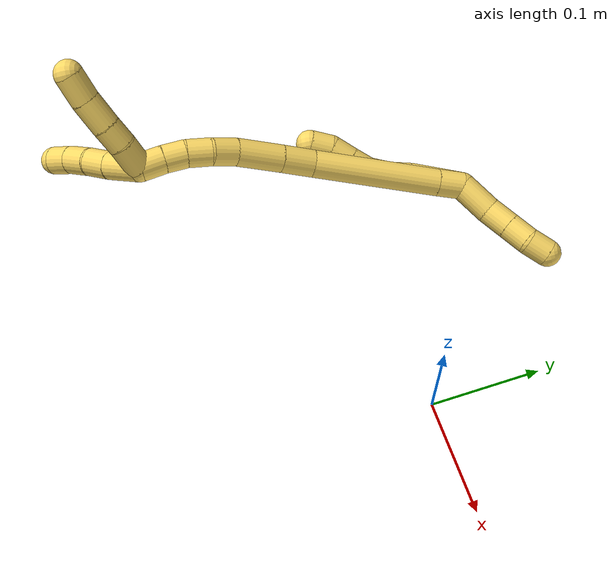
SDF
<sdf version="1.7">
 <world name="default">
  <model name="5">
   <static>0</static>
   <link name="5">
    <collision name="collision-cylinder-e_1_2_8">
     <pose>0.008445 -0.00292 0.022735 0.127743 0.352991 0.022813</pose>
     <geometry><cylinder><radius>0.0125</radius><length>0.048855</length></cylinder></geometry>
     <surface>
      <friction><ode><mu>1.16</mu><mu2>1.16</mu2><slip1>0</slip1><slip2>0</slip2></ode></friction>
      <contact><ode><kp>1e+06</kp><kd>1</kd><max_vel>0</max_vel><min_depth>0.001</min_depth></ode></contact>
     </surface>
    </collision>
    <visual name="visual-cylinder-e_1_2_8">
     <pose>0.008445 -0.00292 0.022735 0.127743 0.352991 0.022813</pose>
     <geometry><cylinder><radius>0.0125</radius><length>0.048855</length></cylinder></geometry>
     <material><ambient>1 0.858824 0.4 1</ambient></material>
    </visual>
    <collision name="collision-cylinder-e_2_8_9">
     <pose>0.018969 -0.009233 0.054895 0.345545 0.204692 0.035843</pose>
     <geometry><cylinder><radius>0.0125</radius><length>0.020464</length></cylinder></geometry>
     <surface>
      <friction><ode><mu>1.16</mu><mu2>1.16</mu2><slip1>0</slip1><slip2>0</slip2></ode></friction>
      <contact><ode><kp>1e+06</kp><kd>1</kd><max_vel>0</max_vel><min_depth>0.001</min_depth></ode></contact>
     </surface>
    </collision>
    <visual name="visual-cylinder-e_2_8_9">
     <pose>0.018969 -0.009233 0.054895 0.345545 0.204692 0.035843</pose>
     <geometry><cylinder><radius>0.0125</radius><length>0.020464</length></cylinder></geometry>
     <material><ambient>1 0.858824 0.4 1</ambient></material>
    </visual>
    <collision name="collision-cylinder-e_3_9_10">
     <pose>0.024161 -0.01837 0.072293 0.624317 0.306754 0.099693</pose>
     <geometry><cylinder><radius>0.0125</radius><length>0.020613</length></cylinder></geometry>
     <surface>
      <friction><ode><mu>1.16</mu><mu2>1.16</mu2><slip1>0</slip1><slip2>0</slip2></ode></friction>
      <contact><ode><kp>1e+06</kp><kd>1</kd><max_vel>0</max_vel><min_depth>0.001</min_depth></ode></contact>
     </surface>
    </collision>
    <visual name="visual-cylinder-e_3_9_10">
     <pose>0.024161 -0.01837 0.072293 0.624317 0.306754 0.099693</pose>
     <geometry><cylinder><radius>0.0125</radius><length>0.020613</length></cylinder></geometry>
     <material><ambient>1 0.858824 0.4 1</ambient></material>
    </visual>
    <collision name="collision-cylinder-e_4_10_11">
     <pose>0.033193 -0.028561 0.087012 0.582876 0.632225 0.195609</pose>
     <geometry><cylinder><radius>0.0125</radius><length>0.020036</length></cylinder></geometry>
     <surface>
      <friction><ode><mu>1.16</mu><mu2>1.16</mu2><slip1>0</slip1><slip2>0</slip2></ode></friction>
      <contact><ode><kp>1e+06</kp><kd>1</kd><max_vel>0</max_vel><min_depth>0.001</min_depth></ode></contact>
     </surface>
    </collision>
    <visual name="visual-cylinder-e_4_10_11">
     <pose>0.033193 -0.028561 0.087012 0.582876 0.632225 0.195609</pose>
     <geometry><cylinder><radius>0.0125</radius><length>0.020036</length></cylinder></geometry>
     <material><ambient>1 0.858824 0.4 1</ambient></material>
    </visual>
    <collision name="collision-cylinder-e_5_11_12">
     <pose>0.045292 -0.037153 0.100443 0.554896 0.665978 0.196368</pose>
     <geometry><cylinder><radius>0.0125</radius><length>0.020002</length></cylinder></geometry>
     <surface>
      <friction><ode><mu>1.16</mu><mu2>1.16</mu2><slip1>0</slip1><slip2>0</slip2></ode></friction>
      <contact><ode><kp>1e+06</kp><kd>1</kd><max_vel>0</max_vel><min_depth>0.001</min_depth></ode></contact>
     </surface>
    </collision>
    <visual name="visual-cylinder-e_5_11_12">
     <pose>0.045292 -0.037153 0.100443 0.554896 0.665978 0.196368</pose>
     <geometry><cylinder><radius>0.0125</radius><length>0.020002</length></cylinder></geometry>
     <material><ambient>1 0.858824 0.4 1</ambient></material>
    </visual>
    <collision name="collision-cylinder-e_6_12_6">
     <pose>0.054891 -0.045924 0.115324 0.513993 0.34852 0.092466</pose>
     <geometry><cylinder><radius>0.0125</radius><length>0.020031</length></cylinder></geometry>
     <surface>
      <friction><ode><mu>1.16</mu><mu2>1.16</mu2><slip1>0</slip1><slip2>0</slip2></ode></friction>
      <contact><ode><kp>1e+06</kp><kd>1</kd><max_vel>0</max_vel><min_depth>0.001</min_depth></ode></contact>
     </surface>
    </collision>
    <visual name="visual-cylinder-e_6_12_6">
     <pose>0.054891 -0.045924 0.115324 0.513993 0.34852 0.092466</pose>
     <geometry><cylinder><radius>0.0125</radius><length>0.020031</length></cylinder></geometry>
     <material><ambient>1 0.858824 0.4 1</ambient></material>
    </visual>
    <collision name="collision-cylinder-e_1_2_13">
     <pose>-0.013086 0.003152 -0.009863 -2.83229 -0.9014 2.51828</pose>
     <geometry><cylinder><radius>0.0125</radius><length>0.033373</length></cylinder></geometry>
     <surface>
      <friction><ode><mu>1.16</mu><mu2>1.16</mu2><slip1>0</slip1><slip2>0</slip2></ode></friction>
      <contact><ode><kp>1e+06</kp><kd>1</kd><max_vel>0</max_vel><min_depth>0.001</min_depth></ode></contact>
     </surface>
    </collision>
    <visual name="visual-cylinder-e_1_2_13">
     <pose>-0.013086 0.003152 -0.009863 -2.83229 -0.9014 2.51828</pose>
     <geometry><cylinder><radius>0.0125</radius><length>0.033373</length></cylinder></geometry>
     <material><ambient>1 0.858824 0.4 1</ambient></material>
    </visual>
    <collision name="collision-cylinder-e_2_13_14">
     <pose>-0.034922 0.006399 -0.027834 -3.12979 -0.823475 3.11456</pose>
     <geometry><cylinder><radius>0.0125</radius><length>0.02386</length></cylinder></geometry>
     <surface>
      <friction><ode><mu>1.16</mu><mu2>1.16</mu2><slip1>0</slip1><slip2>0</slip2></ode></friction>
      <contact><ode><kp>1e+06</kp><kd>1</kd><max_vel>0</max_vel><min_depth>0.001</min_depth></ode></contact>
     </surface>
    </collision>
    <visual name="visual-cylinder-e_2_13_14">
     <pose>-0.034922 0.006399 -0.027834 -3.12979 -0.823475 3.11456</pose>
     <geometry><cylinder><radius>0.0125</radius><length>0.02386</length></cylinder></geometry>
     <material><ambient>1 0.858824 0.4 1</ambient></material>
    </visual>
    <collision name="collision-cylinder-e_3_14_15">
     <pose>-0.051706 0.006637 -0.043361 -3.12241 -0.825003 3.09775</pose>
     <geometry><cylinder><radius>0.0125</radius><length>0.021873</length></cylinder></geometry>
     <surface>
      <friction><ode><mu>1.16</mu><mu2>1.16</mu2><slip1>0</slip1><slip2>0</slip2></ode></friction>
      <contact><ode><kp>1e+06</kp><kd>1</kd><max_vel>0</max_vel><min_depth>0.001</min_depth></ode></contact>
     </surface>
    </collision>
    <visual name="visual-cylinder-e_3_14_15">
     <pose>-0.051706 0.006637 -0.043361 -3.12241 -0.825003 3.09775</pose>
     <geometry><cylinder><radius>0.0125</radius><length>0.021873</length></cylinder></geometry>
     <material><ambient>1 0.858824 0.4 1</ambient></material>
    </visual>
    <collision name="collision-cylinder-e_4_15_5">
     <pose>-0.066501 0.009783 -0.058157 -2.75496 -0.703896 2.1621</pose>
     <geometry><cylinder><radius>0.0125</radius><length>0.020894</length></cylinder></geometry>
     <surface>
      <friction><ode><mu>1.16</mu><mu2>1.16</mu2><slip1>0</slip1><slip2>0</slip2></ode></friction>
      <contact><ode><kp>1e+06</kp><kd>1</kd><max_vel>0</max_vel><min_depth>0.001</min_depth></ode></contact>
     </surface>
    </collision>
    <visual name="visual-cylinder-e_4_15_5">
     <pose>-0.066501 0.009783 -0.058157 -2.75496 -0.703896 2.1621</pose>
     <geometry><cylinder><radius>0.0125</radius><length>0.020894</length></cylinder></geometry>
     <material><ambient>1 0.858824 0.4 1</ambient></material>
    </visual>
    <collision name="collision-cylinder-e_1_2_16">
     <pose>0.003017 -0.005627 0.01011 0.507834 0.255037 0.066523</pose>
     <geometry><cylinder><radius>0.0125</radius><length>0.023915</length></cylinder></geometry>
     <surface>
      <friction><ode><mu>1.16</mu><mu2>1.16</mu2><slip1>0</slip1><slip2>0</slip2></ode></friction>
      <contact><ode><kp>1e+06</kp><kd>1</kd><max_vel>0</max_vel><min_depth>0.001</min_depth></ode></contact>
     </surface>
    </collision>
    <visual name="visual-cylinder-e_1_2_16">
     <pose>0.003017 -0.005627 0.01011 0.507834 0.255037 0.066523</pose>
     <geometry><cylinder><radius>0.0125</radius><length>0.023915</length></cylinder></geometry>
     <material><ambient>1 0.858824 0.4 1</ambient></material>
    </visual>
    <collision name="collision-cylinder-e_2_16_17">
     <pose>0.021516 -0.039744 0.0691 0.527733 0.267124 0.072568</pose>
     <geometry><cylinder><radius>0.0125</radius><length>0.117314</length></cylinder></geometry>
     <surface>
      <friction><ode><mu>1.16</mu><mu2>1.16</mu2><slip1>0</slip1><slip2>0</slip2></ode></friction>
      <contact><ode><kp>1e+06</kp><kd>1</kd><max_vel>0</max_vel><min_depth>0.001</min_depth></ode></contact>
     </surface>
    </collision>
    <visual name="visual-cylinder-e_2_16_17">
     <pose>0.021516 -0.039744 0.0691 0.527733 0.267124 0.072568</pose>
     <geometry><cylinder><radius>0.0125</radius><length>0.117314</length></cylinder></geometry>
     <material><ambient>1 0.858824 0.4 1</ambient></material>
    </visual>
    <collision name="collision-cylinder-e_3_17_18">
     <pose>0.040518 -0.077425 0.129243 0.68441 0.237504 0.084952</pose>
     <geometry><cylinder><radius>0.0125</radius><length>0.029913</length></cylinder></geometry>
     <surface>
      <friction><ode><mu>1.16</mu><mu2>1.16</mu2><slip1>0</slip1><slip2>0</slip2></ode></friction>
      <contact><ode><kp>1e+06</kp><kd>1</kd><max_vel>0</max_vel><min_depth>0.001</min_depth></ode></contact>
     </surface>
    </collision>
    <visual name="visual-cylinder-e_3_17_18">
     <pose>0.040518 -0.077425 0.129243 0.68441 0.237504 0.084952</pose>
     <geometry><cylinder><radius>0.0125</radius><length>0.029913</length></cylinder></geometry>
     <material><ambient>1 0.858824 0.4 1</ambient></material>
    </visual>
    <collision name="collision-cylinder-e_4_18_19">
     <pose>0.048852 -0.099442 0.156598 0.67297 0.229841 0.080707</pose>
     <geometry><cylinder><radius>0.0125</radius><length>0.04227</length></cylinder></geometry>
     <surface>
      <friction><ode><mu>1.16</mu><mu2>1.16</mu2><slip1>0</slip1><slip2>0</slip2></ode></friction>
      <contact><ode><kp>1e+06</kp><kd>1</kd><max_vel>0</max_vel><min_depth>0.001</min_depth></ode></contact>
     </surface>
    </collision>
    <visual name="visual-cylinder-e_4_18_19">
     <pose>0.048852 -0.099442 0.156598 0.67297 0.229841 0.080707</pose>
     <geometry><cylinder><radius>0.0125</radius><length>0.04227</length></cylinder></geometry>
     <material><ambient>1 0.858824 0.4 1</ambient></material>
    </visual>
    <collision name="collision-cylinder-e_5_19_20">
     <pose>0.054549 -0.11992 0.180917 0.749102 0.078348 0.030812</pose>
     <geometry><cylinder><radius>0.0125</radius><length>0.022539</length></cylinder></geometry>
     <surface>
      <friction><ode><mu>1.16</mu><mu2>1.16</mu2><slip1>0</slip1><slip2>0</slip2></ode></friction>
      <contact><ode><kp>1e+06</kp><kd>1</kd><max_vel>0</max_vel><min_depth>0.001</min_depth></ode></contact>
     </surface>
    </collision>
    <visual name="visual-cylinder-e_5_19_20">
     <pose>0.054549 -0.11992 0.180917 0.749102 0.078348 0.030812</pose>
     <geometry><cylinder><radius>0.0125</radius><length>0.022539</length></cylinder></geometry>
     <material><ambient>1 0.858824 0.4 1</ambient></material>
    </visual>
    <collision name="collision-cylinder-e_6_20_21">
     <pose>0.055884 -0.133223 0.198613 0.538218 0.040999 0.011309</pose>
     <geometry><cylinder><radius>0.0125</radius><length>0.022072</length></cylinder></geometry>
     <surface>
      <friction><ode><mu>1.16</mu><mu2>1.16</mu2><slip1>0</slip1><slip2>0</slip2></ode></friction>
      <contact><ode><kp>1e+06</kp><kd>1</kd><max_vel>0</max_vel><min_depth>0.001</min_depth></ode></contact>
     </surface>
    </collision>
    <visual name="visual-cylinder-e_6_20_21">
     <pose>0.055884 -0.133223 0.198613 0.538218 0.040999 0.011309</pose>
     <geometry><cylinder><radius>0.0125</radius><length>0.022072</length></cylinder></geometry>
     <material><ambient>1 0.858824 0.4 1</ambient></material>
    </visual>
    <collision name="collision-cylinder-e_7_21_22">
     <pose>0.055056 -0.143577 0.216876 0.490816 -0.127668 -0.032016</pose>
     <geometry><cylinder><radius>0.0125</radius><length>0.02011</length></cylinder></geometry>
     <surface>
      <friction><ode><mu>1.16</mu><mu2>1.16</mu2><slip1>0</slip1><slip2>0</slip2></ode></friction>
      <contact><ode><kp>1e+06</kp><kd>1</kd><max_vel>0</max_vel><min_depth>0.001</min_depth></ode></contact>
     </surface>
    </collision>
    <visual name="visual-cylinder-e_7_21_22">
     <pose>0.055056 -0.143577 0.216876 0.490816 -0.127668 -0.032016</pose>
     <geometry><cylinder><radius>0.0125</radius><length>0.02011</length></cylinder></geometry>
     <material><ambient>1 0.858824 0.4 1</ambient></material>
    </visual>
    <collision name="collision-cylinder-e_8_22_1">
     <pose>0.051415 -0.1534 0.235039 0.500472 -0.217569 -0.055815</pose>
     <geometry><cylinder><radius>0.0125</radius><length>0.021867</length></cylinder></geometry>
     <surface>
      <friction><ode><mu>1.16</mu><mu2>1.16</mu2><slip1>0</slip1><slip2>0</slip2></ode></friction>
      <contact><ode><kp>1e+06</kp><kd>1</kd><max_vel>0</max_vel><min_depth>0.001</min_depth></ode></contact>
     </surface>
    </collision>
    <visual name="visual-cylinder-e_8_22_1">
     <pose>0.051415 -0.1534 0.235039 0.500472 -0.217569 -0.055815</pose>
     <geometry><cylinder><radius>0.0125</radius><length>0.021867</length></cylinder></geometry>
     <material><ambient>1 0.858824 0.4 1</ambient></material>
    </visual>
    <collision name="collision-cylinder-e_1_1_23">
     <pose>0.058631 -0.167524 0.246677 1.32357 0.80087 0.637031</pose>
     <geometry><cylinder><radius>0.0125</radius><length>0.026674</length></cylinder></geometry>
     <surface>
      <friction><ode><mu>1.16</mu><mu2>1.16</mu2><slip1>0</slip1><slip2>0</slip2></ode></friction>
      <contact><ode><kp>1e+06</kp><kd>1</kd><max_vel>0</max_vel><min_depth>0.001</min_depth></ode></contact>
     </surface>
    </collision>
    <visual name="visual-cylinder-e_1_1_23">
     <pose>0.058631 -0.167524 0.246677 1.32357 0.80087 0.637031</pose>
     <geometry><cylinder><radius>0.0125</radius><length>0.026674</length></cylinder></geometry>
     <material><ambient>1 0.858824 0.4 1</ambient></material>
    </visual>
    <collision name="collision-cylinder-e_2_23_24">
     <pose>0.075933 -0.182788 0.251851 1.13687 0.841707 0.556957</pose>
     <geometry><cylinder><radius>0.0125</radius><length>0.020722</length></cylinder></geometry>
     <surface>
      <friction><ode><mu>1.16</mu><mu2>1.16</mu2><slip1>0</slip1><slip2>0</slip2></ode></friction>
      <contact><ode><kp>1e+06</kp><kd>1</kd><max_vel>0</max_vel><min_depth>0.001</min_depth></ode></contact>
     </surface>
    </collision>
    <visual name="visual-cylinder-e_2_23_24">
     <pose>0.075933 -0.182788 0.251851 1.13687 0.841707 0.556957</pose>
     <geometry><cylinder><radius>0.0125</radius><length>0.020722</length></cylinder></geometry>
     <material><ambient>1 0.858824 0.4 1</ambient></material>
    </visual>
    <collision name="collision-cylinder-e_3_24_25">
     <pose>0.094392 -0.196668 0.258622 1.10087 0.898474 0.575335</pose>
     <geometry><cylinder><radius>0.0125</radius><length>0.027434</length></cylinder></geometry>
     <surface>
      <friction><ode><mu>1.16</mu><mu2>1.16</mu2><slip1>0</slip1><slip2>0</slip2></ode></friction>
      <contact><ode><kp>1e+06</kp><kd>1</kd><max_vel>0</max_vel><min_depth>0.001</min_depth></ode></contact>
     </surface>
    </collision>
    <visual name="visual-cylinder-e_3_24_25">
     <pose>0.094392 -0.196668 0.258622 1.10087 0.898474 0.575335</pose>
     <geometry><cylinder><radius>0.0125</radius><length>0.027434</length></cylinder></geometry>
     <material><ambient>1 0.858824 0.4 1</ambient></material>
    </visual>
    <collision name="collision-cylinder-e_4_25_4">
     <pose>0.115371 -0.21126 0.264663 1.26878 0.951402 0.724692</pose>
     <geometry><cylinder><radius>0.0125</radius><length>0.02517</length></cylinder></geometry>
     <surface>
      <friction><ode><mu>1.16</mu><mu2>1.16</mu2><slip1>0</slip1><slip2>0</slip2></ode></friction>
      <contact><ode><kp>1e+06</kp><kd>1</kd><max_vel>0</max_vel><min_depth>0.001</min_depth></ode></contact>
     </surface>
    </collision>
    <visual name="visual-cylinder-e_4_25_4">
     <pose>0.115371 -0.21126 0.264663 1.26878 0.951402 0.724692</pose>
     <geometry><cylinder><radius>0.0125</radius><length>0.02517</length></cylinder></geometry>
     <material><ambient>1 0.858824 0.4 1</ambient></material>
    </visual>
    <collision name="collision-cylinder-e_1_1_26">
     <pose>0.053306 -0.155436 0.259986 -0.195564 0.261493 -0.025797</pose>
     <geometry><cylinder><radius>0.0125</radius><length>0.032885</length></cylinder></geometry>
     <surface>
      <friction><ode><mu>1.16</mu><mu2>1.16</mu2><slip1>0</slip1><slip2>0</slip2></ode></friction>
      <contact><ode><kp>1e+06</kp><kd>1</kd><max_vel>0</max_vel><min_depth>0.001</min_depth></ode></contact>
     </surface>
    </collision>
    <visual name="visual-cylinder-e_1_1_26">
     <pose>0.053306 -0.155436 0.259986 -0.195564 0.261493 -0.025797</pose>
     <geometry><cylinder><radius>0.0125</radius><length>0.032885</length></cylinder></geometry>
     <material><ambient>1 0.858824 0.4 1</ambient></material>
    </visual>
    <collision name="collision-cylinder-e_2_26_27">
     <pose>0.061327 -0.150507 0.285974 -0.175249 0.342638 -0.030396</pose>
     <geometry><cylinder><radius>0.0125</radius><length>0.022444</length></cylinder></geometry>
     <surface>
      <friction><ode><mu>1.16</mu><mu2>1.16</mu2><slip1>0</slip1><slip2>0</slip2></ode></friction>
      <contact><ode><kp>1e+06</kp><kd>1</kd><max_vel>0</max_vel><min_depth>0.001</min_depth></ode></contact>
     </surface>
    </collision>
    <visual name="visual-cylinder-e_2_26_27">
     <pose>0.061327 -0.150507 0.285974 -0.175249 0.342638 -0.030396</pose>
     <geometry><cylinder><radius>0.0125</radius><length>0.022444</length></cylinder></geometry>
     <material><ambient>1 0.858824 0.4 1</ambient></material>
    </visual>
    <collision name="collision-cylinder-e_3_27_28">
     <pose>0.068496 -0.144829 0.307528 -0.331444 0.280691 -0.047249</pose>
     <geometry><cylinder><radius>0.0125</radius><length>0.024535</length></cylinder></geometry>
     <surface>
      <friction><ode><mu>1.16</mu><mu2>1.16</mu2><slip1>0</slip1><slip2>0</slip2></ode></friction>
      <contact><ode><kp>1e+06</kp><kd>1</kd><max_vel>0</max_vel><min_depth>0.001</min_depth></ode></contact>
     </surface>
    </collision>
    <visual name="visual-cylinder-e_3_27_28">
     <pose>0.068496 -0.144829 0.307528 -0.331444 0.280691 -0.047249</pose>
     <geometry><cylinder><radius>0.0125</radius><length>0.024535</length></cylinder></geometry>
     <material><ambient>1 0.858824 0.4 1</ambient></material>
    </visual>
    <collision name="collision-cylinder-e_4_28_3">
     <pose>0.073626 -0.13888 0.328364 -0.21472 0.172921 -0.018682</pose>
     <geometry><cylinder><radius>0.0125</radius><length>0.020136</length></cylinder></geometry>
     <surface>
      <friction><ode><mu>1.16</mu><mu2>1.16</mu2><slip1>0</slip1><slip2>0</slip2></ode></friction>
      <contact><ode><kp>1e+06</kp><kd>1</kd><max_vel>0</max_vel><min_depth>0.001</min_depth></ode></contact>
     </surface>
    </collision>
    <visual name="visual-cylinder-e_4_28_3">
     <pose>0.073626 -0.13888 0.328364 -0.21472 0.172921 -0.018682</pose>
     <geometry><cylinder><radius>0.0125</radius><length>0.020136</length></cylinder></geometry>
     <material><ambient>1 0.858824 0.4 1</ambient></material>
    </visual>
    <collision name="collision-sphere-3">
     <pose>0.075359 -0.136766 0.338054 0 -0 0</pose>
     <geometry><sphere><radius>0.0125</radius></sphere></geometry>
     <surface>
      <friction><ode><mu>1.16</mu><mu2>1.16</mu2><slip1>0</slip1><slip2>0</slip2></ode></friction>
      <contact><ode><kp>1e+06</kp><kd>1</kd><max_vel>0</max_vel><min_depth>0.001</min_depth></ode></contact>
     </surface>
    </collision>
    <visual name="visual-sphere-3">
     <pose>0.075359 -0.136766 0.338054 0 -0 0</pose>
     <geometry><sphere><radius>0.0125</radius></sphere></geometry>
     <material><ambient>1 0.858824 0.4 1</ambient></material>
    </visual>
    <collision name="collision-sphere-28">
     <pose>0.071894 -0.140993 0.318674 0 -0 0</pose>
     <geometry><sphere><radius>0.0125</radius></sphere></geometry>
     <surface>
      <friction><ode><mu>1.16</mu><mu2>1.16</mu2><slip1>0</slip1><slip2>0</slip2></ode></friction>
      <contact><ode><kp>1e+06</kp><kd>1</kd><max_vel>0</max_vel><min_depth>0.001</min_depth></ode></contact>
     </surface>
    </collision>
    <visual name="visual-sphere-28">
     <pose>0.071894 -0.140993 0.318674 0 -0 0</pose>
     <geometry><sphere><radius>0.0125</radius></sphere></geometry>
     <material><ambient>1 0.858824 0.4 1</ambient></material>
    </visual>
    <collision name="collision-sphere-27">
     <pose>0.065097 -0.148664 0.296382 0 -0 0</pose>
     <geometry><sphere><radius>0.0125</radius></sphere></geometry>
     <surface>
      <friction><ode><mu>1.16</mu><mu2>1.16</mu2><slip1>0</slip1><slip2>0</slip2></ode></friction>
      <contact><ode><kp>1e+06</kp><kd>1</kd><max_vel>0</max_vel><min_depth>0.001</min_depth></ode></contact>
     </surface>
    </collision>
    <visual name="visual-sphere-27">
     <pose>0.065097 -0.148664 0.296382 0 -0 0</pose>
     <geometry><sphere><radius>0.0125</radius></sphere></geometry>
     <material><ambient>1 0.858824 0.4 1</ambient></material>
    </visual>
    <collision name="collision-sphere-26">
     <pose>0.057557 -0.15235 0.275567 0 -0 0</pose>
     <geometry><sphere><radius>0.0125</radius></sphere></geometry>
     <surface>
      <friction><ode><mu>1.16</mu><mu2>1.16</mu2><slip1>0</slip1><slip2>0</slip2></ode></friction>
      <contact><ode><kp>1e+06</kp><kd>1</kd><max_vel>0</max_vel><min_depth>0.001</min_depth></ode></contact>
     </surface>
    </collision>
    <visual name="visual-sphere-26">
     <pose>0.057557 -0.15235 0.275567 0 -0 0</pose>
     <geometry><sphere><radius>0.0125</radius></sphere></geometry>
     <material><ambient>1 0.858824 0.4 1</ambient></material>
    </visual>
    <collision name="collision-sphere-4">
     <pose>0.125618 -0.218236 0.266836 0 -0 0</pose>
     <geometry><sphere><radius>0.0125</radius></sphere></geometry>
     <surface>
      <friction><ode><mu>1.16</mu><mu2>1.16</mu2><slip1>0</slip1><slip2>0</slip2></ode></friction>
      <contact><ode><kp>1e+06</kp><kd>1</kd><max_vel>0</max_vel><min_depth>0.001</min_depth></ode></contact>
     </surface>
    </collision>
    <visual name="visual-sphere-4">
     <pose>0.125618 -0.218236 0.266836 0 -0 0</pose>
     <geometry><sphere><radius>0.0125</radius></sphere></geometry>
     <material><ambient>1 0.858824 0.4 1</ambient></material>
    </visual>
    <collision name="collision-sphere-25">
     <pose>0.105124 -0.204285 0.26249 0 -0 0</pose>
     <geometry><sphere><radius>0.0125</radius></sphere></geometry>
     <surface>
      <friction><ode><mu>1.16</mu><mu2>1.16</mu2><slip1>0</slip1><slip2>0</slip2></ode></friction>
      <contact><ode><kp>1e+06</kp><kd>1</kd><max_vel>0</max_vel><min_depth>0.001</min_depth></ode></contact>
     </surface>
    </collision>
    <visual name="visual-sphere-25">
     <pose>0.105124 -0.204285 0.26249 0 -0 0</pose>
     <geometry><sphere><radius>0.0125</radius></sphere></geometry>
     <material><ambient>1 0.858824 0.4 1</ambient></material>
    </visual>
    <collision name="collision-sphere-24">
     <pose>0.08366 -0.189051 0.254753 0 -0 0</pose>
     <geometry><sphere><radius>0.0125</radius></sphere></geometry>
     <surface>
      <friction><ode><mu>1.16</mu><mu2>1.16</mu2><slip1>0</slip1><slip2>0</slip2></ode></friction>
      <contact><ode><kp>1e+06</kp><kd>1</kd><max_vel>0</max_vel><min_depth>0.001</min_depth></ode></contact>
     </surface>
    </collision>
    <visual name="visual-sphere-24">
     <pose>0.08366 -0.189051 0.254753 0 -0 0</pose>
     <geometry><sphere><radius>0.0125</radius></sphere></geometry>
     <material><ambient>1 0.858824 0.4 1</ambient></material>
    </visual>
    <collision name="collision-sphere-23">
     <pose>0.068206 -0.176526 0.248949 0 -0 0</pose>
     <geometry><sphere><radius>0.0125</radius></sphere></geometry>
     <surface>
      <friction><ode><mu>1.16</mu><mu2>1.16</mu2><slip1>0</slip1><slip2>0</slip2></ode></friction>
      <contact><ode><kp>1e+06</kp><kd>1</kd><max_vel>0</max_vel><min_depth>0.001</min_depth></ode></contact>
     </surface>
    </collision>
    <visual name="visual-sphere-23">
     <pose>0.068206 -0.176526 0.248949 0 -0 0</pose>
     <geometry><sphere><radius>0.0125</radius></sphere></geometry>
     <material><ambient>1 0.858824 0.4 1</ambient></material>
    </visual>
    <collision name="collision-sphere-1">
     <pose>0.049055 -0.158523 0.244405 0 -0 0</pose>
     <geometry><sphere><radius>0.0125</radius></sphere></geometry>
     <surface>
      <friction><ode><mu>1.16</mu><mu2>1.16</mu2><slip1>0</slip1><slip2>0</slip2></ode></friction>
      <contact><ode><kp>1e+06</kp><kd>1</kd><max_vel>0</max_vel><min_depth>0.001</min_depth></ode></contact>
     </surface>
    </collision>
    <visual name="visual-sphere-1">
     <pose>0.049055 -0.158523 0.244405 0 -0 0</pose>
     <geometry><sphere><radius>0.0125</radius></sphere></geometry>
     <material><ambient>1 0.858824 0.4 1</ambient></material>
    </visual>
    <collision name="collision-sphere-22">
     <pose>0.053775 -0.148277 0.225672 0 -0 0</pose>
     <geometry><sphere><radius>0.0125</radius></sphere></geometry>
     <surface>
      <friction><ode><mu>1.16</mu><mu2>1.16</mu2><slip1>0</slip1><slip2>0</slip2></ode></friction>
      <contact><ode><kp>1e+06</kp><kd>1</kd><max_vel>0</max_vel><min_depth>0.001</min_depth></ode></contact>
     </surface>
    </collision>
    <visual name="visual-sphere-22">
     <pose>0.053775 -0.148277 0.225672 0 -0 0</pose>
     <geometry><sphere><radius>0.0125</radius></sphere></geometry>
     <material><ambient>1 0.858824 0.4 1</ambient></material>
    </visual>
    <collision name="collision-sphere-21">
     <pose>0.056336 -0.138876 0.208081 0 -0 0</pose>
     <geometry><sphere><radius>0.0125</radius></sphere></geometry>
     <surface>
      <friction><ode><mu>1.16</mu><mu2>1.16</mu2><slip1>0</slip1><slip2>0</slip2></ode></friction>
      <contact><ode><kp>1e+06</kp><kd>1</kd><max_vel>0</max_vel><min_depth>0.001</min_depth></ode></contact>
     </surface>
    </collision>
    <visual name="visual-sphere-21">
     <pose>0.056336 -0.138876 0.208081 0 -0 0</pose>
     <geometry><sphere><radius>0.0125</radius></sphere></geometry>
     <material><ambient>1 0.858824 0.4 1</ambient></material>
    </visual>
    <collision name="collision-sphere-12">
     <pose>0.051471 -0.041296 0.107127 0 -0 0</pose>
     <geometry><sphere><radius>0.0125</radius></sphere></geometry>
     <surface>
      <friction><ode><mu>1.16</mu><mu2>1.16</mu2><slip1>0</slip1><slip2>0</slip2></ode></friction>
      <contact><ode><kp>1e+06</kp><kd>1</kd><max_vel>0</max_vel><min_depth>0.001</min_depth></ode></contact>
     </surface>
    </collision>
    <visual name="visual-sphere-12">
     <pose>0.051471 -0.041296 0.107127 0 -0 0</pose>
     <geometry><sphere><radius>0.0125</radius></sphere></geometry>
     <material><ambient>1 0.858824 0.4 1</ambient></material>
    </visual>
    <collision name="collision-sphere-11">
     <pose>0.039113 -0.03301 0.093759 0 -0 0</pose>
     <geometry><sphere><radius>0.0125</radius></sphere></geometry>
     <surface>
      <friction><ode><mu>1.16</mu><mu2>1.16</mu2><slip1>0</slip1><slip2>0</slip2></ode></friction>
      <contact><ode><kp>1e+06</kp><kd>1</kd><max_vel>0</max_vel><min_depth>0.001</min_depth></ode></contact>
     </surface>
    </collision>
    <visual name="visual-sphere-11">
     <pose>0.039113 -0.03301 0.093759 0 -0 0</pose>
     <geometry><sphere><radius>0.0125</radius></sphere></geometry>
     <material><ambient>1 0.858824 0.4 1</ambient></material>
    </visual>
    <collision name="collision-sphere-10">
     <pose>0.027273 -0.024113 0.080265 0 -0 0</pose>
     <geometry><sphere><radius>0.0125</radius></sphere></geometry>
     <surface>
      <friction><ode><mu>1.16</mu><mu2>1.16</mu2><slip1>0</slip1><slip2>0</slip2></ode></friction>
      <contact><ode><kp>1e+06</kp><kd>1</kd><max_vel>0</max_vel><min_depth>0.001</min_depth></ode></contact>
     </surface>
    </collision>
    <visual name="visual-sphere-10">
     <pose>0.027273 -0.024113 0.080265 0 -0 0</pose>
     <geometry><sphere><radius>0.0125</radius></sphere></geometry>
     <material><ambient>1 0.858824 0.4 1</ambient></material>
    </visual>
    <collision name="collision-sphere-9">
     <pose>0.021049 -0.012627 0.064321 0 -0 0</pose>
     <geometry><sphere><radius>0.0125</radius></sphere></geometry>
     <surface>
      <friction><ode><mu>1.16</mu><mu2>1.16</mu2><slip1>0</slip1><slip2>0</slip2></ode></friction>
      <contact><ode><kp>1e+06</kp><kd>1</kd><max_vel>0</max_vel><min_depth>0.001</min_depth></ode></contact>
     </surface>
    </collision>
    <visual name="visual-sphere-9">
     <pose>0.021049 -0.012627 0.064321 0 -0 0</pose>
     <geometry><sphere><radius>0.0125</radius></sphere></geometry>
     <material><ambient>1 0.858824 0.4 1</ambient></material>
    </visual>
    <collision name="collision-sphere-2">
     <geometry><sphere><radius>0.0125</radius></sphere></geometry>
     <surface>
      <friction><ode><mu>1.16</mu><mu2>1.16</mu2><slip1>0</slip1><slip2>0</slip2></ode></friction>
      <contact><ode><kp>1e+06</kp><kd>1</kd><max_vel>0</max_vel><min_depth>0.001</min_depth></ode></contact>
     </surface>
    </collision>
    <visual name="visual-sphere-2">
     <geometry><sphere><radius>0.0125</radius></sphere></geometry>
     <material><ambient>1 0.858824 0.4 1</ambient></material>
    </visual>
    <collision name="collision-sphere-19">
     <pose>0.053667 -0.112269 0.17269 0 -0 0</pose>
     <geometry><sphere><radius>0.0125</radius></sphere></geometry>
     <surface>
      <friction><ode><mu>1.16</mu><mu2>1.16</mu2><slip1>0</slip1><slip2>0</slip2></ode></friction>
      <contact><ode><kp>1e+06</kp><kd>1</kd><max_vel>0</max_vel><min_depth>0.001</min_depth></ode></contact>
     </surface>
    </collision>
    <visual name="visual-sphere-19">
     <pose>0.053667 -0.112269 0.17269 0 -0 0</pose>
     <geometry><sphere><radius>0.0125</radius></sphere></geometry>
     <material><ambient>1 0.858824 0.4 1</ambient></material>
    </visual>
    <collision name="collision-sphere-8">
     <pose>0.016889 -0.00584 0.045469 0 -0 0</pose>
     <geometry><sphere><radius>0.0125</radius></sphere></geometry>
     <surface>
      <friction><ode><mu>1.16</mu><mu2>1.16</mu2><slip1>0</slip1><slip2>0</slip2></ode></friction>
      <contact><ode><kp>1e+06</kp><kd>1</kd><max_vel>0</max_vel><min_depth>0.001</min_depth></ode></contact>
     </surface>
    </collision>
    <visual name="visual-sphere-8">
     <pose>0.016889 -0.00584 0.045469 0 -0 0</pose>
     <geometry><sphere><radius>0.0125</radius></sphere></geometry>
     <material><ambient>1 0.858824 0.4 1</ambient></material>
    </visual>
    <collision name="collision-sphere-6">
     <pose>0.058312 -0.050553 0.123521 0 -0 0</pose>
     <geometry><sphere><radius>0.0125</radius></sphere></geometry>
     <surface>
      <friction><ode><mu>1.16</mu><mu2>1.16</mu2><slip1>0</slip1><slip2>0</slip2></ode></friction>
      <contact><ode><kp>1e+06</kp><kd>1</kd><max_vel>0</max_vel><min_depth>0.001</min_depth></ode></contact>
     </surface>
    </collision>
    <visual name="visual-sphere-6">
     <pose>0.058312 -0.050553 0.123521 0 -0 0</pose>
     <geometry><sphere><radius>0.0125</radius></sphere></geometry>
     <material><ambient>1 0.858824 0.4 1</ambient></material>
    </visual>
    <collision name="collision-sphere-13">
     <pose>-0.026171 0.006304 -0.019726 0 -0 0</pose>
     <geometry><sphere><radius>0.0125</radius></sphere></geometry>
     <surface>
      <friction><ode><mu>1.16</mu><mu2>1.16</mu2><slip1>0</slip1><slip2>0</slip2></ode></friction>
      <contact><ode><kp>1e+06</kp><kd>1</kd><max_vel>0</max_vel><min_depth>0.001</min_depth></ode></contact>
     </surface>
    </collision>
    <visual name="visual-sphere-13">
     <pose>-0.026171 0.006304 -0.019726 0 -0 0</pose>
     <geometry><sphere><radius>0.0125</radius></sphere></geometry>
     <material><ambient>1 0.858824 0.4 1</ambient></material>
    </visual>
    <collision name="collision-sphere-14">
     <pose>-0.043673 0.006495 -0.035942 0 -0 0</pose>
     <geometry><sphere><radius>0.0125</radius></sphere></geometry>
     <surface>
      <friction><ode><mu>1.16</mu><mu2>1.16</mu2><slip1>0</slip1><slip2>0</slip2></ode></friction>
      <contact><ode><kp>1e+06</kp><kd>1</kd><max_vel>0</max_vel><min_depth>0.001</min_depth></ode></contact>
     </surface>
    </collision>
    <visual name="visual-sphere-14">
     <pose>-0.043673 0.006495 -0.035942 0 -0 0</pose>
     <geometry><sphere><radius>0.0125</radius></sphere></geometry>
     <material><ambient>1 0.858824 0.4 1</ambient></material>
    </visual>
    <collision name="collision-sphere-15">
     <pose>-0.059739 0.00678 -0.050781 0 -0 0</pose>
     <geometry><sphere><radius>0.0125</radius></sphere></geometry>
     <surface>
      <friction><ode><mu>1.16</mu><mu2>1.16</mu2><slip1>0</slip1><slip2>0</slip2></ode></friction>
      <contact><ode><kp>1e+06</kp><kd>1</kd><max_vel>0</max_vel><min_depth>0.001</min_depth></ode></contact>
     </surface>
    </collision>
    <visual name="visual-sphere-15">
     <pose>-0.059739 0.00678 -0.050781 0 -0 0</pose>
     <geometry><sphere><radius>0.0125</radius></sphere></geometry>
     <material><ambient>1 0.858824 0.4 1</ambient></material>
    </visual>
    <collision name="collision-sphere-5">
     <pose>-0.073262 0.012786 -0.065533 0 -0 0</pose>
     <geometry><sphere><radius>0.0125</radius></sphere></geometry>
     <surface>
      <friction><ode><mu>1.16</mu><mu2>1.16</mu2><slip1>0</slip1><slip2>0</slip2></ode></friction>
      <contact><ode><kp>1e+06</kp><kd>1</kd><max_vel>0</max_vel><min_depth>0.001</min_depth></ode></contact>
     </surface>
    </collision>
    <visual name="visual-sphere-5">
     <pose>-0.073262 0.012786 -0.065533 0 -0 0</pose>
     <geometry><sphere><radius>0.0125</radius></sphere></geometry>
     <material><ambient>1 0.858824 0.4 1</ambient></material>
    </visual>
    <collision name="collision-sphere-16">
     <pose>0.006033 -0.011253 0.020221 0 -0 0</pose>
     <geometry><sphere><radius>0.0125</radius></sphere></geometry>
     <surface>
      <friction><ode><mu>1.16</mu><mu2>1.16</mu2><slip1>0</slip1><slip2>0</slip2></ode></friction>
      <contact><ode><kp>1e+06</kp><kd>1</kd><max_vel>0</max_vel><min_depth>0.001</min_depth></ode></contact>
     </surface>
    </collision>
    <visual name="visual-sphere-16">
     <pose>0.006033 -0.011253 0.020221 0 -0 0</pose>
     <geometry><sphere><radius>0.0125</radius></sphere></geometry>
     <material><ambient>1 0.858824 0.4 1</ambient></material>
    </visual>
    <collision name="collision-sphere-17">
     <pose>0.036999 -0.068235 0.11798 0 -0 0</pose>
     <geometry><sphere><radius>0.0125</radius></sphere></geometry>
     <surface>
      <friction><ode><mu>1.16</mu><mu2>1.16</mu2><slip1>0</slip1><slip2>0</slip2></ode></friction>
      <contact><ode><kp>1e+06</kp><kd>1</kd><max_vel>0</max_vel><min_depth>0.001</min_depth></ode></contact>
     </surface>
    </collision>
    <visual name="visual-sphere-17">
     <pose>0.036999 -0.068235 0.11798 0 -0 0</pose>
     <geometry><sphere><radius>0.0125</radius></sphere></geometry>
     <material><ambient>1 0.858824 0.4 1</ambient></material>
    </visual>
    <collision name="collision-sphere-18">
     <pose>0.044037 -0.086615 0.140505 0 -0 0</pose>
     <geometry><sphere><radius>0.0125</radius></sphere></geometry>
     <surface>
      <friction><ode><mu>1.16</mu><mu2>1.16</mu2><slip1>0</slip1><slip2>0</slip2></ode></friction>
      <contact><ode><kp>1e+06</kp><kd>1</kd><max_vel>0</max_vel><min_depth>0.001</min_depth></ode></contact>
     </surface>
    </collision>
    <visual name="visual-sphere-18">
     <pose>0.044037 -0.086615 0.140505 0 -0 0</pose>
     <geometry><sphere><radius>0.0125</radius></sphere></geometry>
     <material><ambient>1 0.858824 0.4 1</ambient></material>
    </visual>
    <collision name="collision-sphere-20">
     <pose>0.055431 -0.127571 0.189145 0 -0 0</pose>
     <geometry><sphere><radius>0.0125</radius></sphere></geometry>
     <surface>
      <friction><ode><mu>1.16</mu><mu2>1.16</mu2><slip1>0</slip1><slip2>0</slip2></ode></friction>
      <contact><ode><kp>1e+06</kp><kd>1</kd><max_vel>0</max_vel><min_depth>0.001</min_depth></ode></contact>
     </surface>
    </collision>
    <visual name="visual-sphere-20">
     <pose>0.055431 -0.127571 0.189145 0 -0 0</pose>
     <geometry><sphere><radius>0.0125</radius></sphere></geometry>
     <material><ambient>1 0.858824 0.4 1</ambient></material>
    </visual>
    <inertial>
     <pose>0.034227 -0.079131 0.130809 0 -0 0</pose>
     <mass>0.75</mass>
     <inertia><ixx>0.000208</ixx><ixy>0</ixy><ixz>0</ixz><iyy>0.00018</iyy><iyz>0</iyz><izz>7e-05</izz></inertia>
    </inertial>
   </link>
   <pose>-0.182342 0.099542 0.032145 -1.98062 -0.461176 2.98318</pose>
  </model>
 </world>
</sdf>
